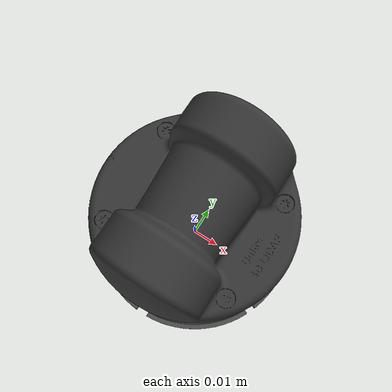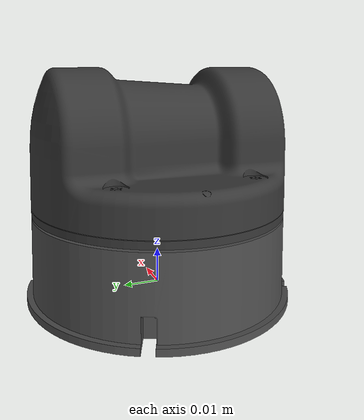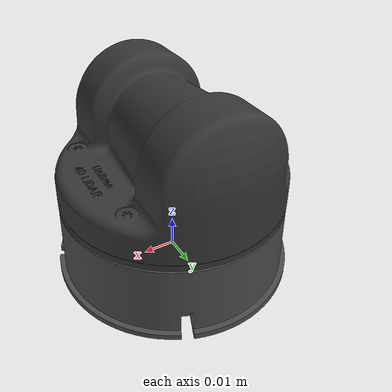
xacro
<?xml version="1.0" ?>
<!-- UniLidarL2 sensor model exported from Onshape and adapted for kanga_description meshes -->
<robot name="UniLidarL2">
  <!-- Link unilidarl2base -->
  <link name="unilidarl2base">
    <inertial>
      <origin xyz="-4.86924e-06 6.88756e-05 0.00436145" rpy="0 0 0"/>
      <mass value="0.1"/>
      <inertia ixx="4.60192e-05" ixy="-1.473e-09" ixz="-3.537e-09" iyy="4.63963e-05" iyz="9.141e-08" izz="8.42575e-05"/>
    </inertial>
    <visual>
      <origin xyz="0.53025 -1.94934e-06 0.313234" rpy="3.14159 -0.349066 -3.14159"/>
      <geometry>
        <mesh filename="package://kanga_description/meshes/sensors/unilidar_l2/unilidarl2base.stl"/>
      </geometry>
      <material name="unilidarl2base_material">
        <color rgba="0.301961 0.301961 0.301961 1"/>
      </material>
    </visual>
    <collision>
      <origin xyz="0.53025 -1.94934e-06 0.313234" rpy="3.14159 -0.349066 -3.14159"/>
      <geometry>
        <mesh filename="package://kanga_description/meshes/sensors/unilidar_l2/unilidarl2base.stl"/>
      </geometry>
    </collision>
  </link>

  <!-- Frame LidarBase (dummy link + fixed joint) -->
  <link name="LidarBase">
    <inertial>
      <origin xyz="0 0 0" rpy="0 0 0"/>
      <mass value="1e-9"/>
      <inertia ixx="0" ixy="0" ixz="0" iyy="0" iyz="0" izz="0"/>
    </inertial>
  </link>
  <joint name="LidarBase_frame" type="fixed">
    <origin xyz="0 0 -0" rpy="0 0 1.5708"/>
    <parent link="unilidarl2base"/>
    <child link="LidarBase"/>
    <axis xyz="0 0 0"/>
  </joint>

  <!-- Link unilidarl2top -->
  <link name="unilidarl2top">
    <inertial>
      <origin xyz="-2.7414e-06 6.66489e-05 -0.0157604" rpy="0 0 0"/>
      <mass value="0.13"/>
      <inertia ixx="5.78833e-05" ixy="-1.075e-09" ixz="2.975e-09" iyy="3.66094e-05" iyz="9.3857e-08" izz="7.00661e-05"/>
    </inertial>
    <visual>
      <origin xyz="-0.53025 -1.94934e-06 -0.290634" rpy="-0 0.349066 -0"/>
      <geometry>
        <mesh filename="package://kanga_description/meshes/sensors/unilidar_l2/unilidarl2top.stl"/>
      </geometry>
      <material name="unilidarl2top_material">
        <color rgba="0.215686 0.215686 0.215686 1"/>
      </material>
    </visual>
    <collision>
      <origin xyz="-0.53025 -1.94934e-06 -0.290634" rpy="-0 0.349066 -0"/>
      <geometry>
        <mesh filename="package://kanga_description/meshes/sensors/unilidar_l2/unilidarl2top.stl"/>
      </geometry>
    </collision>
  </link>

  <!-- Joint from unilidarl2base to unilidarl2top -->
  <joint name="LidarTop" type="revolute">
    <origin xyz="0 0 0.0226" rpy="3.14159 -0 -3.14159"/>
    <parent link="unilidarl2base"/>
    <child link="unilidarl2top"/>
    <axis xyz="0 0 1"/>
    <limit effort="10" velocity="10" lower="0" upper="0"/>
  </joint>
</robot>
